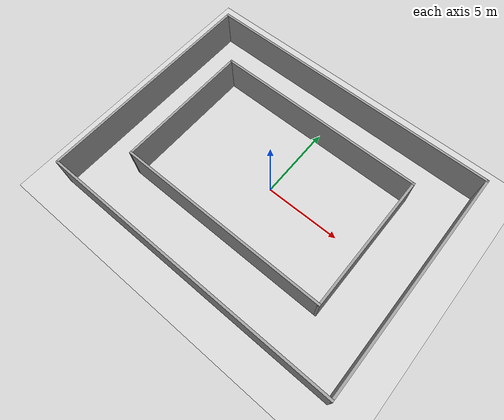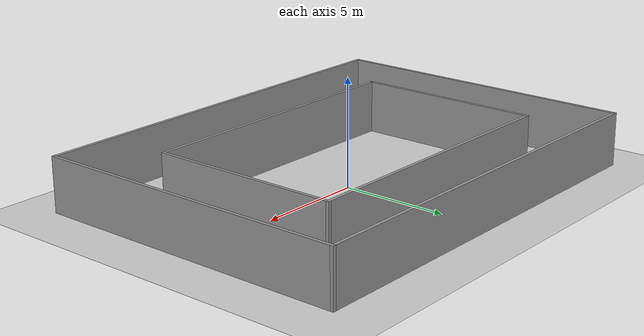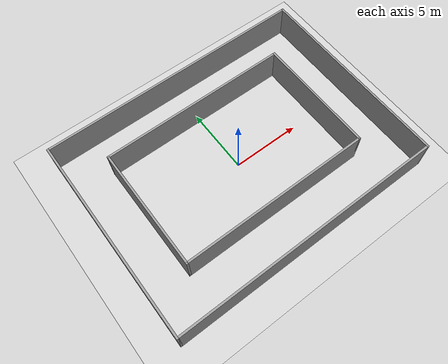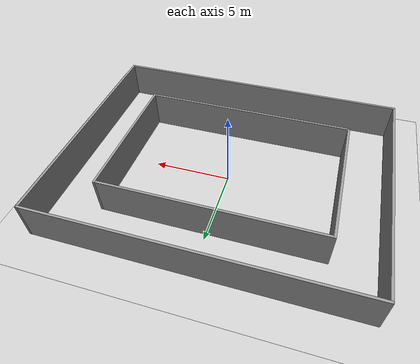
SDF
<sdf version="1.6">
 <world name="default">
  <light name="sun" type="directional">
   <pose>0 0 10 0 -0 0</pose>
   <diffuse>0.8 0.8 0.8 1</diffuse>
   <specular>0.2 0.2 0.2 1</specular>
   <attenuation>
    <range>1000</range>
    <constant>0.9</constant>
    <linear>0.01</linear>
    <quadratic>0.001</quadratic>
   </attenuation>
   <direction>-0.5 0.1 -0.9</direction>
  </light>
  <model name="ground_plane">
   <static>1</static>
   <link name="link">
    <collision name="collision">
     <geometry><plane><normal>0 0 1</normal><size>100 100</size></plane></geometry>
     <surface>
      <contact><collide_bitmask>65535</collide_bitmask></contact>
      <friction><ode><mu>100</mu><mu2>50</mu2></ode></friction>
     </surface>
    </collision>
    <visual name="visual">
     <cast_shadows>0</cast_shadows>
     <geometry><plane><normal>0 0 1</normal><size>100 100</size></plane></geometry>
     <material>
      <script><uri>file://media/materials/scripts/gazebo.material</uri><name>Gazebo/Grey</name></script>
     </material>
    </visual>
   </link>
  </model>
  <gravity>0 0 -9.8</gravity>
  <magnetic_field>6e-06 2.3e-05 -4.2e-05</magnetic_field>
  <atmosphere type="adiabatic"/>
  <physics name="default_physics" default="0" type="ode">
   <max_step_size>0.001</max_step_size>
   <real_time_factor>1</real_time_factor>
   <real_time_update_rate>1000</real_time_update_rate>
  </physics>
  <scene><ambient>0.4 0.4 0.4 1</ambient><background>0.7 0.7 0.7 1</background><shadows>1</shadows></scene>
  <audio><device>default</device></audio>
  <spherical_coordinates>
   <surface_model>EARTH_WGS84</surface_model>
   <latitude_deg>0</latitude_deg>
   <longitude_deg>0</longitude_deg>
   <elevation>0</elevation>
   <heading_deg>0</heading_deg>
  </spherical_coordinates>
  <model name="world4">
   <link name="Wall_17">
    <collision name="Wall_17_Collision">
     <geometry><box><size>9 0.15 2.5</size></box></geometry>
     <pose>0 0 1.25 0 -0 0</pose>
    </collision>
    <visual name="Wall_17_Visual">
     <pose>0 0 1.25 0 -0 0</pose>
     <geometry><box><size>9 0.15 2.5</size></box></geometry>
     <material>
      <script><uri>file://media/materials/scripts/gazebo.material</uri><name>Gazebo/Grey</name></script>
      <ambient>1 1 1 1</ambient>
     </material>
     <meta><layer>0</layer></meta>
    </visual>
    <pose>-7.075 0.15 0 0 -0 -1.5708</pose>
   </link>
   <link name="Wall_20">
    <collision name="Wall_20_Collision">
     <geometry><box><size>14 0.15 2.5</size></box></geometry>
     <pose>0 0 1.25 0 -0 0</pose>
    </collision>
    <visual name="Wall_20_Visual">
     <pose>0 0 1.25 0 -0 0</pose>
     <geometry><box><size>14 0.15 2.5</size></box></geometry>
     <material>
      <script><uri>file://media/materials/scripts/gazebo.material</uri><name>Gazebo/Grey</name></script>
      <ambient>1 1 1 1</ambient>
     </material>
     <meta><layer>0</layer></meta>
    </visual>
    <pose>-0.15 -4.275 0 0 -0 0</pose>
   </link>
   <link name="Wall_21">
    <collision name="Wall_21_Collision">
     <geometry><box><size>9 0.15 2.5</size></box></geometry>
     <pose>0 0 1.25 0 -0 0</pose>
    </collision>
    <visual name="Wall_21_Visual">
     <pose>0 0 1.25 0 -0 0</pose>
     <geometry><box><size>9 0.15 2.5</size></box></geometry>
     <material>
      <script><uri>file://media/materials/scripts/gazebo.material</uri><name>Gazebo/Grey</name></script>
      <ambient>1 1 1 1</ambient>
     </material>
     <meta><layer>0</layer></meta>
    </visual>
    <pose>6.775 0.15 0 0 -0 1.5708</pose>
   </link>
   <link name="Wall_22">
    <collision name="Wall_22_Collision">
     <geometry><box><size>14 0.15 2.5</size></box></geometry>
     <pose>0 0 1.25 0 -0 0</pose>
    </collision>
    <visual name="Wall_22_Visual">
     <pose>0 0 1.25 0 -0 0</pose>
     <geometry><box><size>14 0.15 2.5</size></box></geometry>
     <material>
      <script><uri>file://media/materials/scripts/gazebo.material</uri><name>Gazebo/Grey</name></script>
      <ambient>1 1 1 1</ambient>
     </material>
     <meta><layer>0</layer></meta>
    </visual>
    <pose>-0.15 4.575 0 0 -0 3.14159</pose>
   </link>
   <link name="Wall_4">
    <collision name="Wall_4_Collision">
     <geometry><box><size>15 0.15 2.5</size></box></geometry>
     <pose>0 0 1.25 0 -0 0</pose>
    </collision>
    <visual name="Wall_4_Visual">
     <pose>0 0 1.25 0 -0 0</pose>
     <geometry><box><size>15 0.15 2.5</size></box></geometry>
     <material>
      <script><uri>file://media/materials/scripts/gazebo.material</uri><name>Gazebo/Grey</name></script>
      <ambient>1 1 1 1</ambient>
     </material>
     <meta><layer>0</layer></meta>
    </visual>
    <pose>-9.925 0 0 0 -0 -1.5708</pose>
   </link>
   <link name="Wall_5">
    <collision name="Wall_5_Collision">
     <geometry><box><size>20 0.15 2.5</size></box></geometry>
     <pose>0 0 1.25 0 -0 0</pose>
    </collision>
    <visual name="Wall_5_Visual">
     <pose>0 0 1.25 0 -0 0</pose>
     <geometry><box><size>20 0.15 2.5</size></box></geometry>
     <material>
      <script><uri>file://media/materials/scripts/gazebo.material</uri><name>Gazebo/Grey</name></script>
      <ambient>1 1 1 1</ambient>
     </material>
     <meta><layer>0</layer></meta>
    </visual>
    <pose>-0 -7.425 0 0 -0 0</pose>
   </link>
   <link name="Wall_6">
    <collision name="Wall_6_Collision">
     <geometry><box><size>15 0.15 2.5</size></box></geometry>
     <pose>0 0 1.25 0 -0 0</pose>
    </collision>
    <visual name="Wall_6_Visual">
     <pose>0 0 1.25 0 -0 0</pose>
     <geometry><box><size>15 0.15 2.5</size></box></geometry>
     <material>
      <script><uri>file://media/materials/scripts/gazebo.material</uri><name>Gazebo/Grey</name></script>
      <ambient>1 1 1 1</ambient>
     </material>
     <meta><layer>0</layer></meta>
    </visual>
    <pose>9.925 0 0 0 -0 1.5708</pose>
   </link>
   <link name="Wall_7">
    <collision name="Wall_7_Collision">
     <geometry><box><size>20 0.15 2.5</size></box></geometry>
     <pose>0 0 1.25 0 -0 0</pose>
    </collision>
    <visual name="Wall_7_Visual">
     <pose>0 0 1.25 0 -0 0</pose>
     <geometry><box><size>20 0.15 2.5</size></box></geometry>
     <material>
      <script><uri>file://media/materials/scripts/gazebo.material</uri><name>Gazebo/Grey</name></script>
      <ambient>1 1 1 1</ambient>
     </material>
     <meta><layer>0</layer></meta>
    </visual>
    <pose>-0 7.425 0 0 -0 3.14159</pose>
   </link>
   <static>1</static>
  </model>
 </world>
</sdf>
